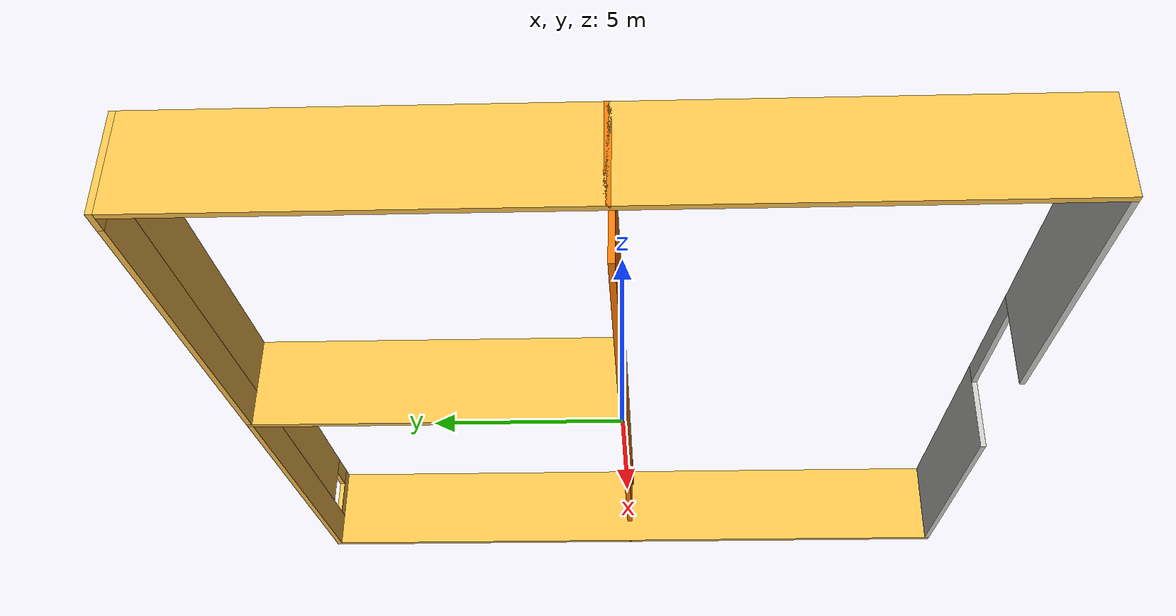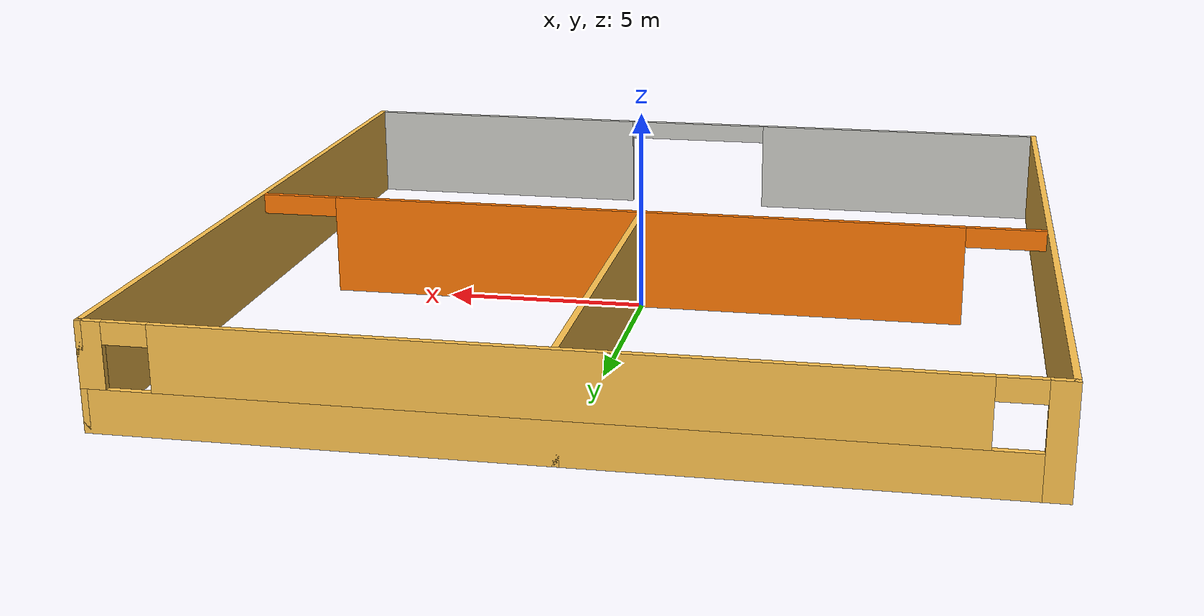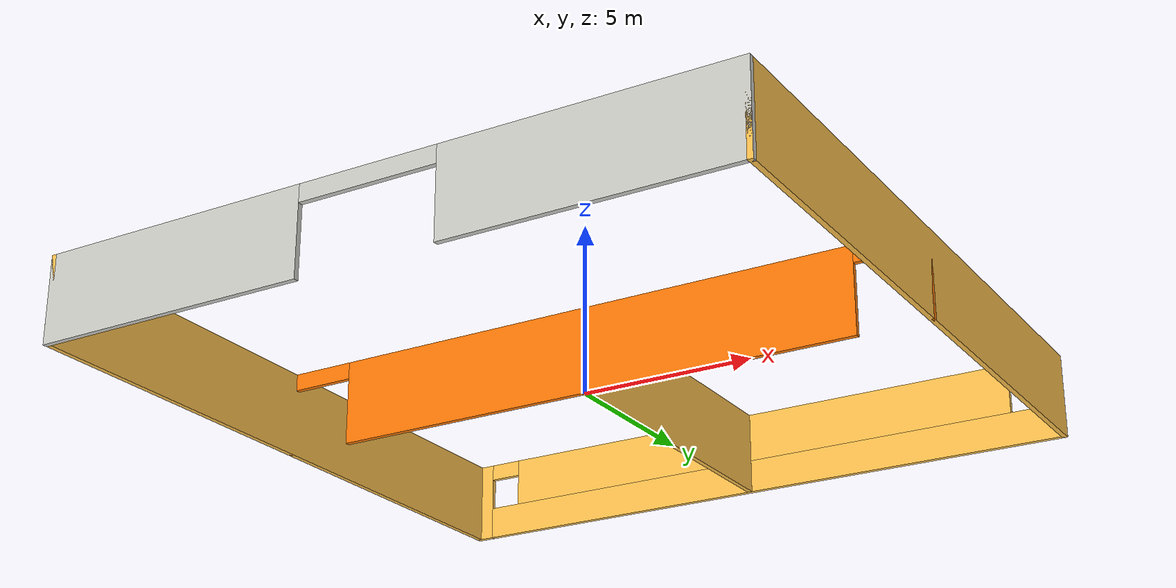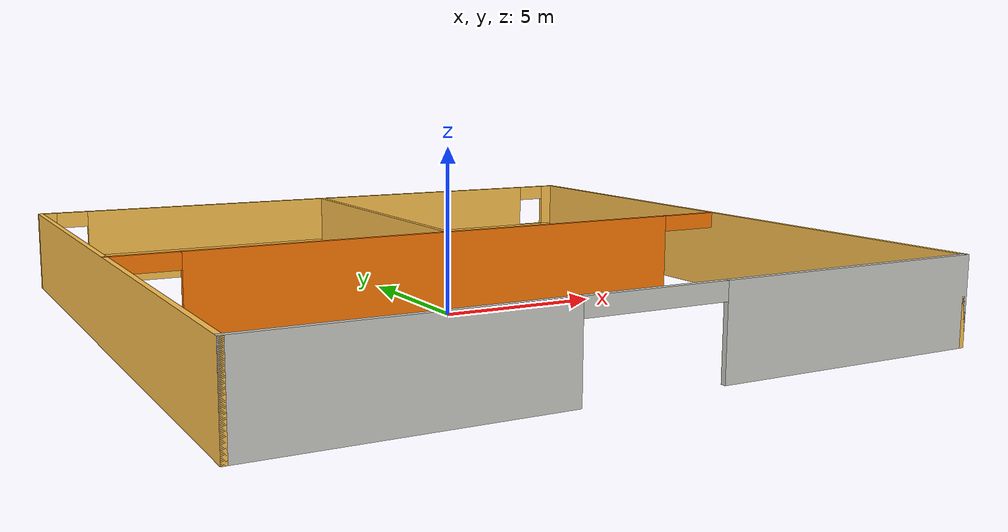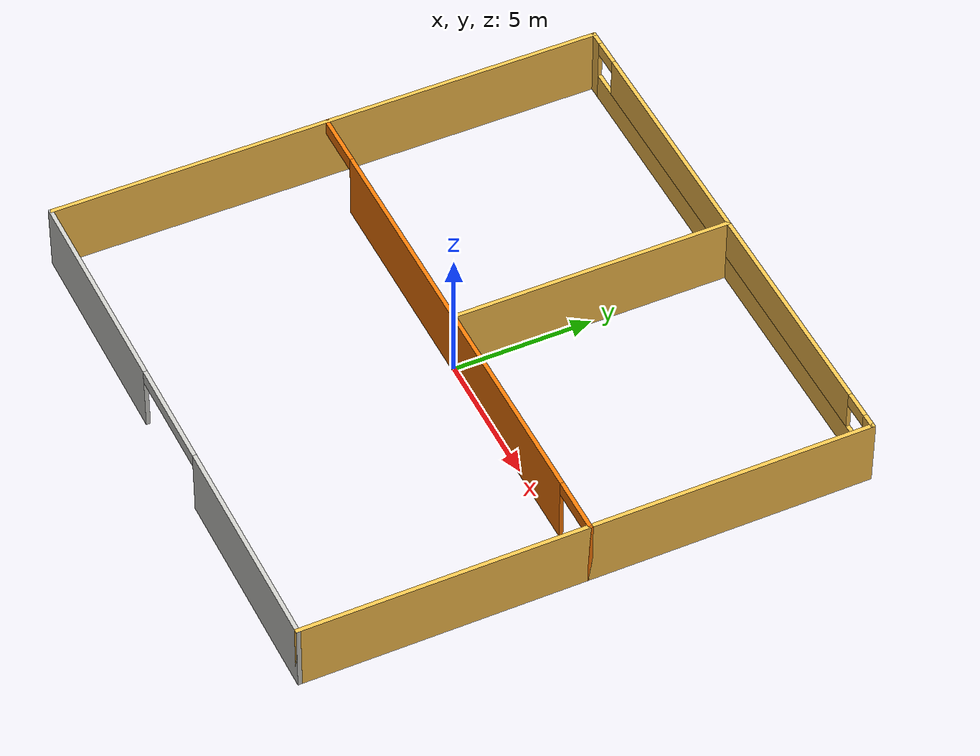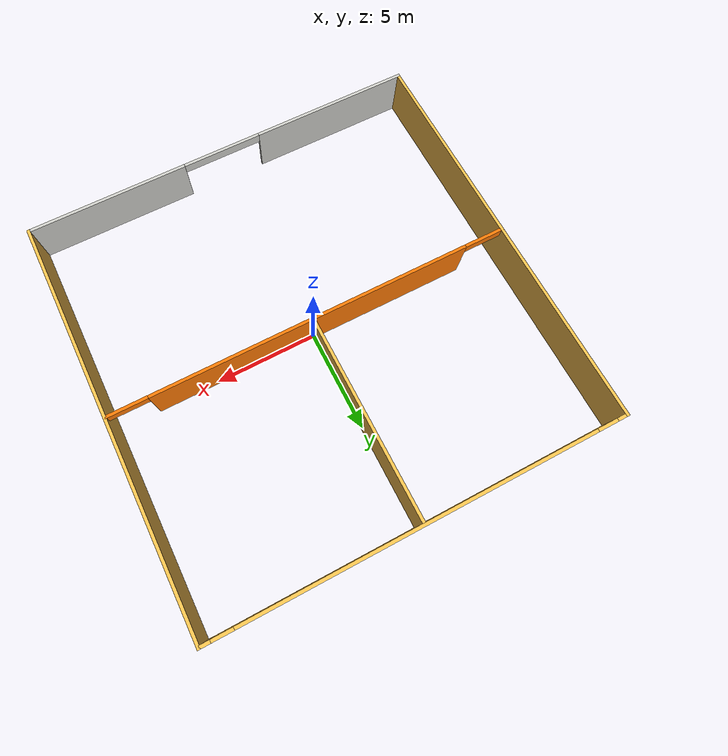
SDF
<?xml version='1.0'?>
<sdf version='1.7'>
  <model name='Building'>
    <pose>0 0 0 0 -0 0</pose>
    <link name='Wall_20'>
      <pose>0 10 0 0 -0 0</pose>
      <visual name='Wall_20_Visual_0'>
        <pose>-9.7875 0 1.25 0 -0 0</pose>
        <geometry>
          <box>
            <size>0.575 0.15 2.5</size>
          </box>
        </geometry>
        <material>
          <script>
            <uri>file://media/materials/scripts/gazebo.material</uri>
            <name>Gazebo/Grey</name>
          </script>
          <ambient>1 0.764706 0.305882 1</ambient>
        </material>
        <meta>
          <layer>0</layer>
        </meta>
      </visual>
      <collision name='Wall_20_Collision_0'>
        <geometry>
          <box>
            <size>0.575 0.15 2.5</size>
          </box>
        </geometry>
        <pose>-9.7875 0 1.25 0 -0 0</pose>
      </collision>
      <visual name='Wall_20_Visual_1'>
        <pose>0.2875 0 0.5 0 -0 0</pose>
        <geometry>
          <box>
            <size>19.575 0.15 1</size>
          </box>
        </geometry>
        <material>
          <script>
            <uri>file://media/materials/scripts/gazebo.material</uri>
            <name>Gazebo/Grey</name>
          </script>
          <ambient>1 0.764706 0.305882 1</ambient>
        </material>
        <meta>
          <layer>0</layer>
        </meta>
      </visual>
      <collision name='Wall_20_Collision_1'>
        <geometry>
          <box>
            <size>19.575 0.15 1</size>
          </box>
        </geometry>
        <pose>0.2875 0 0.5 0 -0 0</pose>
      </collision>
      <visual name='Wall_20_Visual_2'>
        <pose>0 0 1.75 0 -0 0</pose>
        <geometry>
          <box>
            <size>17 0.15 1.5</size>
          </box>
        </geometry>
        <material>
          <script>
            <uri>file://media/materials/scripts/gazebo.material</uri>
            <name>Gazebo/Grey</name>
          </script>
          <ambient>1 0.764706 0.305882 1</ambient>
        </material>
        <meta>
          <layer>0</layer>
        </meta>
      </visual>
      <collision name='Wall_20_Collision_2'>
        <geometry>
          <box>
            <size>17 0.15 1.5</size>
          </box>
        </geometry>
        <pose>0 0 1.75 0 -0 0</pose>
      </collision>
      <visual name='Wall_20_Visual_3'>
        <pose>9.7875 0 1.75 0 -0 0</pose>
        <geometry>
          <box>
            <size>0.575 0.15 1.5</size>
          </box>
        </geometry>
        <material>
          <script>
            <uri>file://media/materials/scripts/gazebo.material</uri>
            <name>Gazebo/Grey</name>
          </script>
          <ambient>1 0.764706 0.305882 1</ambient>
        </material>
        <meta>
          <layer>0</layer>
        </meta>
      </visual>
      <collision name='Wall_20_Collision_3'>
        <geometry>
          <box>
            <size>0.575 0.15 1.5</size>
          </box>
        </geometry>
        <pose>9.7875 0 1.75 0 -0 0</pose>
      </collision>
      <visual name='Wall_20_Visual_4'>
        <pose>-9 0 2.25 0 -0 0</pose>
        <geometry>
          <box>
            <size>1 0.15 0.5</size>
          </box>
        </geometry>
        <material>
          <script>
            <uri>file://media/materials/scripts/gazebo.material</uri>
            <name>Gazebo/Grey</name>
          </script>
          <ambient>1 0.764706 0.305882 1</ambient>
        </material>
        <meta>
          <layer>0</layer>
        </meta>
      </visual>
      <collision name='Wall_20_Collision_4'>
        <geometry>
          <box>
            <size>1 0.15 0.5</size>
          </box>
        </geometry>
        <pose>-9 0 2.25 0 -0 0</pose>
      </collision>
      <visual name='Wall_20_Visual_5'>
        <pose>9 0 2.25 0 -0 0</pose>
        <geometry>
          <box>
            <size>1 0.15 0.5</size>
          </box>
        </geometry>
        <material>
          <script>
            <uri>file://media/materials/scripts/gazebo.material</uri>
            <name>Gazebo/Grey</name>
          </script>
          <ambient>1 0.764706 0.305882 1</ambient>
        </material>
        <meta>
          <layer>0</layer>
        </meta>
      </visual>
      <collision name='Wall_20_Collision_5'>
        <geometry>
          <box>
            <size>1 0.15 0.5</size>
          </box>
        </geometry>
        <pose>9 0 2.25 0 -0 0</pose>
      </collision>
    </link>
    <link name='Wall_22'>
      <pose>0 -10 0 0 -0 0</pose>
      <visual name='Wall_22_Visual_0'>
        <pose>-6.0375 0 1.25 0 -0 0</pose>
        <geometry>
          <box>
            <size>8.075 0.15 2.5</size>
          </box>
        </geometry>
        <material>
          <script>
            <uri>file://media/materials/scripts/gazebo.material</uri>
            <name>Gazebo/CeilingTiled</name>
          </script>
          <ambient>1 1 1 1</ambient>
        </material>
        <meta>
          <layer>0</layer>
        </meta>
      </visual>
      <collision name='Wall_22_Collision_0'>
        <geometry>
          <box>
            <size>8.075 0.15 2.5</size>
          </box>
        </geometry>
        <pose>-6.0375 0 1.25 0 -0 0</pose>
      </collision>
      <visual name='Wall_22_Visual_1'>
        <pose>6.0375 0 1.25 0 -0 0</pose>
        <geometry>
          <box>
            <size>8.075 0.15 2.5</size>
          </box>
        </geometry>
        <material>
          <script>
            <uri>file://media/materials/scripts/gazebo.material</uri>
            <name>Gazebo/CeilingTiled</name>
          </script>
          <ambient>1 1 1 1</ambient>
        </material>
        <meta>
          <layer>0</layer>
        </meta>
      </visual>
      <collision name='Wall_22_Collision_1'>
        <geometry>
          <box>
            <size>8.075 0.15 2.5</size>
          </box>
        </geometry>
        <pose>6.0375 0 1.25 0 -0 0</pose>
      </collision>
      <visual name='Wall_22_Visual_2'>
        <pose>0 0 2.25 0 -0 0</pose>
        <geometry>
          <box>
            <size>4 0.15 0.5</size>
          </box>
        </geometry>
        <material>
          <script>
            <uri>file://media/materials/scripts/gazebo.material</uri>
            <name>Gazebo/CeilingTiled</name>
          </script>
          <ambient>1 1 1 1</ambient>
        </material>
        <meta>
          <layer>0</layer>
        </meta>
      </visual>
      <collision name='Wall_22_Collision_2'>
        <geometry>
          <box>
            <size>4 0.15 0.5</size>
          </box>
        </geometry>
        <pose>0 0 2.25 0 -0 0</pose>
      </collision>
    </link>
    <link name='Wall_24'>
      <collision name='Wall_24_Collision'>
        <geometry>
          <box>
            <size>20.15 0.15 2.5</size>
          </box>
        </geometry>
        <pose>0 0 1.25 0 -0 0</pose>
      </collision>
      <visual name='Wall_24_Visual'>
        <pose>0 0 1.25 0 -0 0</pose>
        <geometry>
          <box>
            <size>20.15 0.15 2.5</size>
          </box>
        </geometry>
        <material>
          <script>
            <uri>file://media/materials/scripts/gazebo.material</uri>
            <name>Gazebo/Grey</name>
          </script>
          <ambient>1 0.764706 0.305882 1</ambient>
        </material>
        <meta>
          <layer>0</layer>
        </meta>
      </visual>
      <pose>-10 0 0 0 -0 -1.5708</pose>
    </link>
    <link name='Wall_26'>
      <collision name='Wall_26_Collision'>
        <geometry>
          <box>
            <size>20.15 0.15 2.5</size>
          </box>
        </geometry>
        <pose>0 0 1.25 0 -0 0</pose>
      </collision>
      <visual name='Wall_26_Visual'>
        <pose>0 0 1.25 0 -0 0</pose>
        <geometry>
          <box>
            <size>20.15 0.15 2.5</size>
          </box>
        </geometry>
        <material>
          <script>
            <uri>file://media/materials/scripts/gazebo.material</uri>
            <name>Gazebo/Grey</name>
          </script>
          <ambient>1 0.764706 0.305882 1</ambient>
        </material>
        <meta>
          <layer>0</layer>
        </meta>
      </visual>
      <pose>10 0 0 0 -0 -1.5708</pose>
    </link>
    <link name='Wall_28'>
      <pose>0 0 0 0 -0 0</pose>
      <visual name='Wall_28_Visual_0'>
        <pose>-10.0375 0 1.25 0 -0 0</pose>
        <geometry>
          <box>
            <size>0.075 0.15 2.5</size>
          </box>
        </geometry>
        <material>
          <script>
            <uri>file://media/materials/scripts/gazebo.material</uri>
            <name>Gazebo/Grey</name>
          </script>
          <ambient>0.996078 0.47451 0.0196078 1</ambient>
        </material>
        <meta>
          <layer>0</layer>
        </meta>
      </visual>
      <collision name='Wall_28_Collision_0'>
        <geometry>
          <box>
            <size>0.075 0.15 2.5</size>
          </box>
        </geometry>
        <pose>-10.0375 0 1.25 0 -0 0</pose>
      </collision>
      <visual name='Wall_28_Visual_1'>
        <pose>0 0 1.25 0 -0 0</pose>
        <geometry>
          <box>
            <size>16 0.15 2.5</size>
          </box>
        </geometry>
        <material>
          <script>
            <uri>file://media/materials/scripts/gazebo.material</uri>
            <name>Gazebo/Grey</name>
          </script>
          <ambient>0.996078 0.47451 0.0196078 1</ambient>
        </material>
        <meta>
          <layer>0</layer>
        </meta>
      </visual>
      <collision name='Wall_28_Collision_1'>
        <geometry>
          <box>
            <size>16 0.15 2.5</size>
          </box>
        </geometry>
        <pose>0 0 1.25 0 -0 0</pose>
      </collision>
      <visual name='Wall_28_Visual_2'>
        <pose>10.0375 0 1.25 0 -0 0</pose>
        <geometry>
          <box>
            <size>0.075 0.15 2.5</size>
          </box>
        </geometry>
        <material>
          <script>
            <uri>file://media/materials/scripts/gazebo.material</uri>
            <name>Gazebo/Grey</name>
          </script>
          <ambient>0.996078 0.47451 0.0196078 1</ambient>
        </material>
        <meta>
          <layer>0</layer>
        </meta>
      </visual>
      <collision name='Wall_28_Collision_2'>
        <geometry>
          <box>
            <size>0.075 0.15 2.5</size>
          </box>
        </geometry>
        <pose>10.0375 0 1.25 0 -0 0</pose>
      </collision>
      <visual name='Wall_28_Visual_3'>
        <pose>-9 0 2.25 0 -0 0</pose>
        <geometry>
          <box>
            <size>2 0.15 0.5</size>
          </box>
        </geometry>
        <material>
          <script>
            <uri>file://media/materials/scripts/gazebo.material</uri>
            <name>Gazebo/Grey</name>
          </script>
          <ambient>0.996078 0.47451 0.0196078 1</ambient>
        </material>
        <meta>
          <layer>0</layer>
        </meta>
      </visual>
      <collision name='Wall_28_Collision_3'>
        <geometry>
          <box>
            <size>2 0.15 0.5</size>
          </box>
        </geometry>
        <pose>-9 0 2.25 0 -0 0</pose>
      </collision>
      <visual name='Wall_28_Visual_4'>
        <pose>9 0 2.25 0 -0 0</pose>
        <geometry>
          <box>
            <size>2 0.15 0.5</size>
          </box>
        </geometry>
        <material>
          <script>
            <uri>file://media/materials/scripts/gazebo.material</uri>
            <name>Gazebo/Grey</name>
          </script>
          <ambient>0.996078 0.47451 0.0196078 1</ambient>
        </material>
        <meta>
          <layer>0</layer>
        </meta>
      </visual>
      <collision name='Wall_28_Collision_4'>
        <geometry>
          <box>
            <size>2 0.15 0.5</size>
          </box>
        </geometry>
        <pose>9 0 2.25 0 -0 0</pose>
      </collision>
    </link>
    <link name='Wall_30'>
      <collision name='Wall_30_Collision'>
        <geometry>
          <box>
            <size>10.15 0.15 2.5</size>
          </box>
        </geometry>
        <pose>0 0 1.25 0 -0 0</pose>
      </collision>
      <visual name='Wall_30_Visual'>
        <pose>0 0 1.25 0 -0 0</pose>
        <geometry>
          <box>
            <size>10.15 0.15 2.5</size>
          </box>
        </geometry>
        <material>
          <script>
            <uri>file://media/materials/scripts/gazebo.material</uri>
            <name>Gazebo/Grey</name>
          </script>
          <ambient>1 0.764706 0.305882 1</ambient>
        </material>
        <meta>
          <layer>0</layer>
        </meta>
      </visual>
      <pose>0 5 0 0 -0 -1.5708</pose>
    </link>
    <static>1</static>
  </model>
</sdf>
